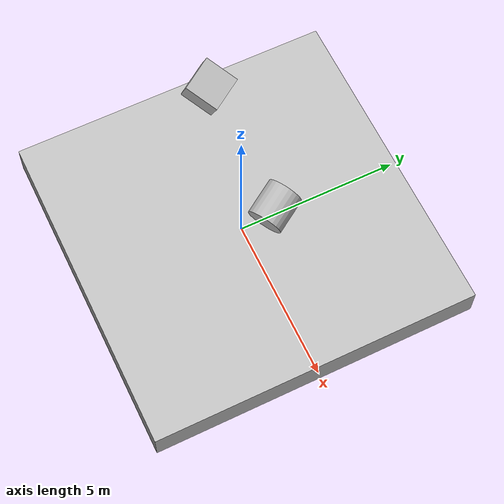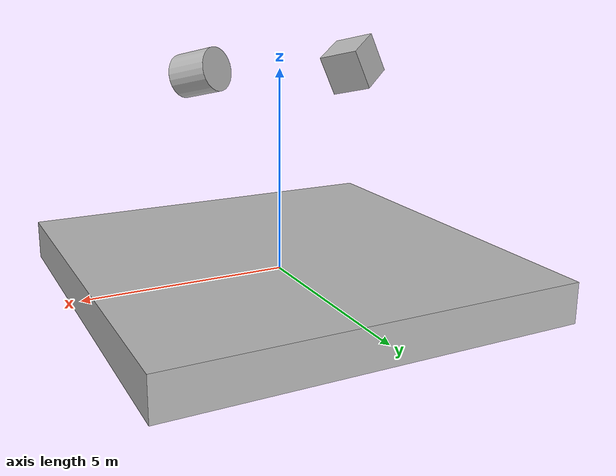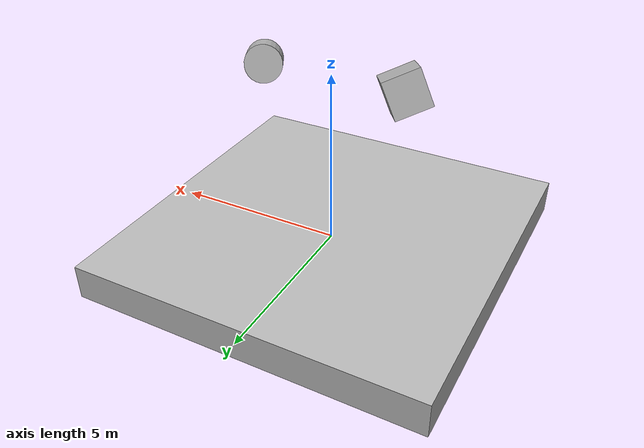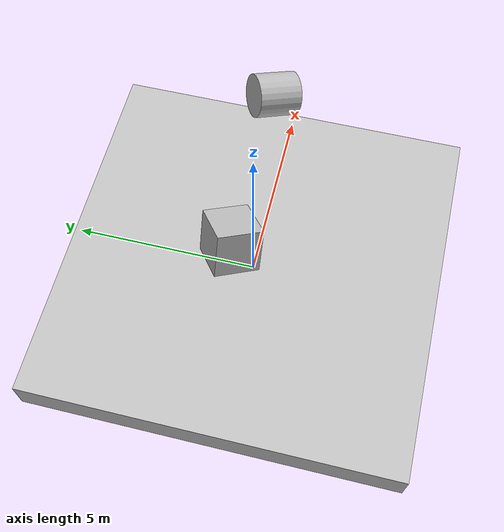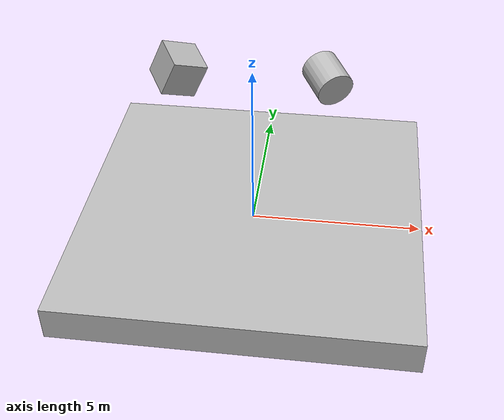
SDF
<?xml version="1.0" ?>
<sdf version="1.4">
    <world name="default">
        <include>
            <uri>model://sun</uri>
        </include>
        <physics type="ode">
            <gravity>0 0 -10.0</gravity>
        </physics>
        <model name="model_ground">
            <static>true</static>
            <pose>0 0 0 0 0 0</pose>
            <link name="ground">
                <pose>0 0 0 0 0 0</pose>
                <inertial>
                    <inertia>
                        <ixx>1</ixx>
                        <ixy>0</ixy>
                        <ixz>0</ixz>
                        <iyy>1</iyy>
                        <iyz>0</iyz>
                        <izz>1</izz>
                    </inertia>
                    <mass>10.0</mass>
                </inertial>
                <visual name="visual">
                    <pose>0 0 0 0 0 0</pose>
                    <geometry>
                        <box>
                            <size>10 10 1</size>
                        </box>
                    </geometry>
                    <material>
                        <script>Gazebo/WoodPallet</script>
                    </material>
                </visual>
                <collision name="coll_ground">
                    <pose>0 0 0 0 0 0</pose>
                    <max_contacts>250</max_contacts>
                    <geometry>
                        <box>
                            <size>10 10 1</size>
                        </box>
                    </geometry>
                    <surface>
                        <friction>
                            <ode>
                                <mu>0.5</mu>
                                <mu2>0.2</mu2>
                                <fdir1>1 0 0</fdir1>
                                <slip1>0</slip1>
                                <slip2>0</slip2>
                            </ode>
                        </friction>
                        <bounce>
                            <restitution_coefficient>0</restitution_coefficient>
                            <threshold>1000000</threshold>
                        </bounce>
                        <contact>
                            <ode>
                                <soft_cfm>0.0</soft_cfm>
                                <soft_erp>0.2</soft_erp>
                                <kp>1000000000000000</kp>
                                <kd>10000000000000</kd>
                                <max_vel>100</max_vel>
                                <min_depth>0</min_depth>
                            </ode>
                        </contact>
                    </surface>
                    <laser_retro>100</laser_retro>
                </collision>
            </link>
        </model>
        <model name="model_box1">
            <pose>-2 0 5 1 2 0</pose>
            <link name="link_box1">
                <pose>0 0 0 0 0 0</pose>
                <inertial>
                    <inertia>
                        <ixx>1</ixx>
                        <ixy>0</ixy>
                        <ixz>0</ixz>
                        <iyy>1</iyy>
                        <iyz>0</iyz>
                        <izz>1</izz>
                    </inertia>
                    <mass>1.0</mass>
                </inertial>
                <visual name="visual_box1">
                    <pose>0 0 0 0 0 0</pose>
                    <geometry>
                        <box>
                            <size>1 1 1</size>
                        </box>
                    </geometry>
                </visual>
                <collision name="coll_box1">
                    <pose>0 0 0 0 0 0</pose>
                    <geometry>
                        <box>
                            <size>1 1 1</size>
                        </box>
                    </geometry>
                </collision>
            </link>
        </model>
        <model name="model_cylinder1">
            <pose>2 0 5 1 2 0</pose>
            <link name="link_cylinder1">
                <pose>0 0 0 0 0 0</pose>
                <inertial>
                    <inertia>
                        <ixx>1</ixx>
                        <ixy>0</ixy>
                        <ixz>0</ixz>
                        <iyy>1</iyy>
                        <iyz>0</iyz>
                        <izz>1</izz>
                    </inertia>
                    <mass>1.0</mass>
                </inertial>
                <visual name="visual_cylinder1">
                    <pose>0 0 0 0 0 0</pose>
                    <geometry>
                        <cylinder>
                            <radius>0.5</radius>
                            <length>1</length>
                        </cylinder>
                    </geometry>
                </visual>
                <collision name="coll_cylinder1">
                    <pose>0 0 0 0 0 0</pose>
                    <geometry>
                        <cylinder>
                            <radius>0.5</radius>
                            <length>1</length>
                        </cylinder>
                    </geometry>
                </collision>
            </link>
        </model>
    </world>
</sdf>
